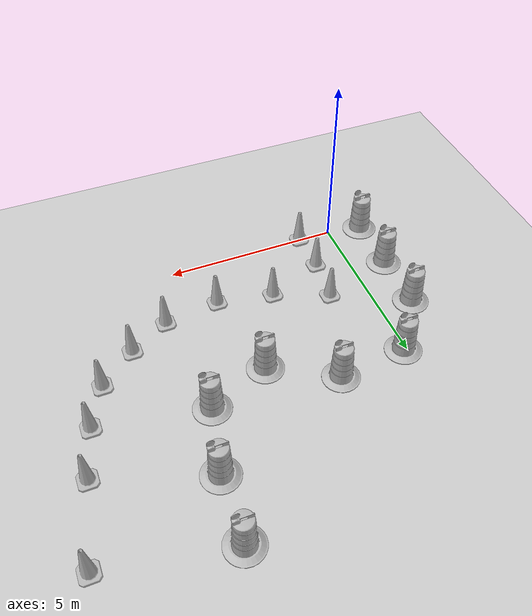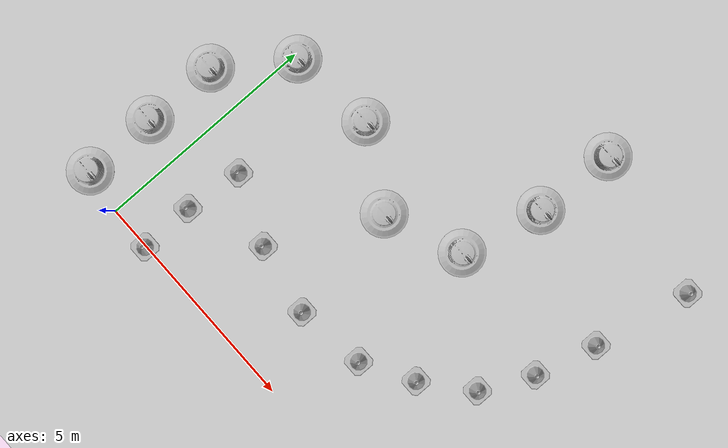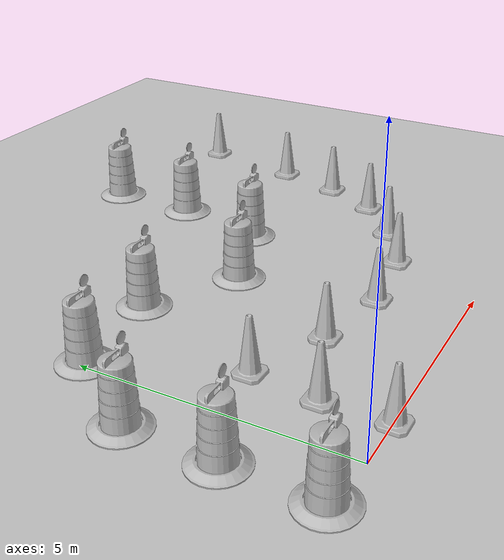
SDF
<sdf version="1.7">
 <world name="default">
  <light name="sun" type="directional">
   <pose>0 0 10 0 -0 0</pose>
   <diffuse>0.8 0.8 0.8 1</diffuse>
   <specular>0.2 0.2 0.2 1</specular>
   <attenuation>
    <range>1000</range>
    <constant>0.9</constant>
    <linear>0.01</linear>
    <quadratic>0.001</quadratic>
   </attenuation>
   <direction>-0.5 0.1 -0.9</direction>
   <spot><inner_angle>0</inner_angle><outer_angle>0</outer_angle><falloff>0</falloff></spot>
  </light>
  <model name="ground_plane">
   <static>1</static>
   <link name="link">
    <collision name="collision">
     <geometry><plane><normal>0 0 1</normal><size>100 100</size></plane></geometry>
     <surface>
      <contact><collide_bitmask>65535</collide_bitmask></contact>
      <friction><ode><mu>100</mu><mu2>50</mu2></ode></friction>
     </surface>
    </collision>
    <visual name="visual">
     <cast_shadows>0</cast_shadows>
     <geometry><plane><normal>0 0 1</normal><size>100 100</size></plane></geometry>
     <material>
      <script><uri>file://media/materials/scripts/gazebo.material</uri><name>Gazebo/Grey</name></script>
     </material>
    </visual>
   </link>
  </model>
  <gravity>0 0 -9.8</gravity>
  <magnetic_field>6e-06 2.3e-05 -4.2e-05</magnetic_field>
  <atmosphere type="adiabatic"/>
  <physics type="ode">
   <max_step_size>0.001</max_step_size>
   <real_time_factor>1</real_time_factor>
   <real_time_update_rate>1000</real_time_update_rate>
  </physics>
  <scene><ambient>0.4 0.4 0.4 1</ambient><background>0.7 0.7 0.7 1</background><shadows>1</shadows></scene>
  <spherical_coordinates>
   <surface_model>EARTH_WGS84</surface_model>
   <latitude_deg>0</latitude_deg>
   <longitude_deg>0</longitude_deg>
   <elevation>0</elevation>
   <heading_deg>0</heading_deg>
  </spherical_coordinates>
  <model name="Construction Barrel">
   <link name="link">
    <inertial>
     <pose>0 0 0.4 0 -0 0</pose>
     <mass>500</mass>
     <inertia><ixx>51.2096</ixx><iyy>51.2096</iyy><izz>25</izz><ixy>0</ixy><ixz>0</ixz><iyz>0</iyz></inertia>
    </inertial>
    <collision name="collision">
     <geometry><mesh><uri>model://construction_barrel/meshes/construction_barrel.dae</uri></mesh></geometry>
    </collision>
    <visual name="visual">
     <geometry><mesh><uri>model://construction_barrel/meshes/construction_barrel.dae</uri></mesh></geometry>
    </visual>
   </link>
   <pose>-0.966667 1.80977 -0 0 0 -5.3e-05</pose>
  </model>
  <model name="Construction Barrel_0">
   <link name="link">
    <inertial>
     <pose>0 0 0.4 0 -0 0</pose>
     <mass>500</mass>
     <inertia><ixx>51.2096</ixx><iyy>51.2096</iyy><izz>25</izz><ixy>0</ixy><ixz>0</ixz><iyz>0</iyz></inertia>
    </inertial>
    <collision name="collision">
     <geometry><mesh><uri>model://construction_barrel/meshes/construction_barrel.dae</uri></mesh></geometry>
    </collision>
    <visual name="visual">
     <geometry><mesh><uri>model://construction_barrel/meshes/construction_barrel.dae</uri></mesh></geometry>
    </visual>
   </link>
   <pose>-0.979538 0.159169 -0 0 0 -4.8e-05</pose>
  </model>
  <model name="Construction Barrel_1">
   <link name="link">
    <inertial>
     <pose>0 0 0.4 0 -0 0</pose>
     <mass>500</mass>
     <inertia><ixx>51.2096</ixx><iyy>51.2096</iyy><izz>25</izz><ixy>0</ixy><ixz>0</ixz><iyz>0</iyz></inertia>
    </inertial>
    <collision name="collision">
     <geometry><mesh><uri>model://construction_barrel/meshes/construction_barrel.dae</uri></mesh></geometry>
    </collision>
    <visual name="visual">
     <geometry><mesh><uri>model://construction_barrel/meshes/construction_barrel.dae</uri></mesh></geometry>
    </visual>
   </link>
   <pose>-0.947069 3.47415 -0 0 0 -4.7e-05</pose>
  </model>
  <model name="Construction Barrel_2">
   <link name="link">
    <inertial>
     <pose>0 0 0.4 0 -0 0</pose>
     <mass>500</mass>
     <inertia><ixx>51.2096</ixx><iyy>51.2096</iyy><izz>25</izz><ixy>0</ixy><ixz>0</ixz><iyz>0</iyz></inertia>
    </inertial>
    <collision name="collision">
     <geometry><mesh><uri>model://construction_barrel/meshes/construction_barrel.dae</uri></mesh></geometry>
    </collision>
    <visual name="visual">
     <geometry><mesh><uri>model://construction_barrel/meshes/construction_barrel.dae</uri></mesh></geometry>
    </visual>
   </link>
   <pose>0.111893 4.97897 -0 0 0 -4.6e-05</pose>
  </model>
  <model name="Construction Barrel_3">
   <link name="link">
    <inertial>
     <pose>0 0 0.4 0 -0 0</pose>
     <mass>500</mass>
     <inertia><ixx>51.2096</ixx><iyy>51.2096</iyy><izz>25</izz><ixy>0</ixy><ixz>0</ixz><iyz>0</iyz></inertia>
    </inertial>
    <collision name="collision">
     <geometry><mesh><uri>model://construction_barrel/meshes/construction_barrel.dae</uri></mesh></geometry>
    </collision>
    <visual name="visual">
     <geometry><mesh><uri>model://construction_barrel/meshes/construction_barrel.dae</uri></mesh></geometry>
    </visual>
   </link>
   <pose>2.03638 5.18461 -0 0 0 -4.4e-05</pose>
  </model>
  <model name="Construction Barrel_4">
   <link name="link">
    <inertial>
     <pose>0 0 0.4 0 -0 0</pose>
     <mass>500</mass>
     <inertia><ixx>51.2096</ixx><iyy>51.2096</iyy><izz>25</izz><ixy>0</ixy><ixz>0</ixz><iyz>0</iyz></inertia>
    </inertial>
    <collision name="collision">
     <geometry><mesh><uri>model://construction_barrel/meshes/construction_barrel.dae</uri></mesh></geometry>
    </collision>
    <visual name="visual">
     <geometry><mesh><uri>model://construction_barrel/meshes/construction_barrel.dae</uri></mesh></geometry>
    </visual>
   </link>
   <pose>3.74532 4.20522 -0 0 0 -4.3e-05</pose>
  </model>
  <model name="Construction Barrel_5">
   <link name="link">
    <inertial>
     <pose>0 0 0.4 0 -0 0</pose>
     <mass>500</mass>
     <inertia><ixx>51.2096</ixx><iyy>51.2096</iyy><izz>25</izz><ixy>0</ixy><ixz>0</ixz><iyz>0</iyz></inertia>
    </inertial>
    <collision name="collision">
     <geometry><mesh><uri>model://construction_barrel/meshes/construction_barrel.dae</uri></mesh></geometry>
    </collision>
    <visual name="visual">
     <geometry><mesh><uri>model://construction_barrel/meshes/construction_barrel.dae</uri></mesh></geometry>
    </visual>
   </link>
   <pose>5.43217 4.89608 -0 0 0 -4.2e-05</pose>
  </model>
  <model name="Construction Barrel_6">
   <link name="link">
    <inertial>
     <pose>0 0 0.4 0 -0 0</pose>
     <mass>500</mass>
     <inertia><ixx>51.2096</ixx><iyy>51.2096</iyy><izz>25</izz><ixy>0</ixy><ixz>0</ixz><iyz>0</iyz></inertia>
    </inertial>
    <collision name="collision">
     <geometry><mesh><uri>model://construction_barrel/meshes/construction_barrel.dae</uri></mesh></geometry>
    </collision>
    <visual name="visual">
     <geometry><mesh><uri>model://construction_barrel/meshes/construction_barrel.dae</uri></mesh></geometry>
    </visual>
   </link>
   <pose>5.84445 6.72604 -0 0 0 -4.1e-05</pose>
  </model>
  <model name="Construction Barrel_7">
   <link name="link">
    <inertial>
     <pose>0 0 0.4 0 -0 0</pose>
     <mass>500</mass>
     <inertia><ixx>51.2096</ixx><iyy>51.2096</iyy><izz>25</izz><ixy>0</ixy><ixz>0</ixz><iyz>0</iyz></inertia>
    </inertial>
    <collision name="collision">
     <geometry><mesh><uri>model://construction_barrel/meshes/construction_barrel.dae</uri></mesh></geometry>
    </collision>
    <visual name="visual">
     <geometry><mesh><uri>model://construction_barrel/meshes/construction_barrel.dae</uri></mesh></geometry>
    </visual>
   </link>
   <pose>5.92335 8.52618 -0 0 0 -4e-05</pose>
  </model>
  <model name="Construction Cone">
   <link name="link">
    <collision name="collision">
     <geometry>
      <mesh><scale>10 10 10</scale><uri>model://construction_cone/meshes/construction_cone.dae</uri></mesh>
     </geometry>
    </collision>
    <visual name="visual">
     <geometry>
      <mesh><scale>10 10 10</scale><uri>model://construction_cone/meshes/construction_cone.dae</uri></mesh>
     </geometry>
    </visual>
    <inertial>
     <inertia><ixx>1</ixx><ixy>0</ixy><ixz>0</ixz><iyy>1</iyy><iyz>0</iyz><izz>1</izz></inertia>
     <mass>1</mass>
    </inertial>
   </link>
   <pose>0.975524 -0.020087 -0 -0 -0 -0</pose>
  </model>
  <model name="Construction Cone_0">
   <link name="link">
    <collision name="collision">
     <geometry>
      <mesh><scale>10 10 10</scale><uri>model://construction_cone/meshes/construction_cone.dae</uri></mesh>
     </geometry>
    </collision>
    <visual name="visual">
     <geometry>
      <mesh><scale>10 10 10</scale><uri>model://construction_cone/meshes/construction_cone.dae</uri></mesh>
     </geometry>
    </visual>
    <inertial>
     <inertia><ixx>1</ixx><ixy>0</ixy><ixz>0</ixz><iyy>1</iyy><iyz>0</iyz><izz>1</izz></inertia>
     <mass>1</mass>
    </inertial>
   </link>
   <pose>0.959371 1.18722 -0 0 -1e-06 0</pose>
  </model>
  <model name="Construction Cone_1">
   <link name="link">
    <collision name="collision">
     <geometry>
      <mesh><scale>10 10 10</scale><uri>model://construction_cone/meshes/construction_cone.dae</uri></mesh>
     </geometry>
    </collision>
    <visual name="visual">
     <geometry>
      <mesh><scale>10 10 10</scale><uri>model://construction_cone/meshes/construction_cone.dae</uri></mesh>
     </geometry>
    </visual>
    <inertial>
     <inertia><ixx>1</ixx><ixy>0</ixy><ixz>0</ixz><iyy>1</iyy><iyz>0</iyz><izz>1</izz></inertia>
     <mass>1</mass>
    </inertial>
   </link>
   <pose>1.09629 2.47377 -1e-06 2e-06 2e-06 0</pose>
  </model>
  <model name="Construction Cone_2">
   <link name="link">
    <collision name="collision">
     <geometry>
      <mesh><scale>10 10 10</scale><uri>model://construction_cone/meshes/construction_cone.dae</uri></mesh>
     </geometry>
    </collision>
    <visual name="visual">
     <geometry>
      <mesh><scale>10 10 10</scale><uri>model://construction_cone/meshes/construction_cone.dae</uri></mesh>
     </geometry>
    </visual>
    <inertial>
     <inertia><ixx>1</ixx><ixy>0</ixy><ixz>0</ixz><iyy>1</iyy><iyz>0</iyz><izz>1</izz></inertia>
     <mass>1</mass>
    </inertial>
   </link>
   <pose>2.59046 1.85342 -1e-06 2e-06 2e-06 0</pose>
  </model>
  <model name="Construction Cone_3">
   <link name="link">
    <collision name="collision">
     <geometry>
      <mesh><scale>10 10 10</scale><uri>model://construction_cone/meshes/construction_cone.dae</uri></mesh>
     </geometry>
    </collision>
    <visual name="visual">
     <geometry>
      <mesh><scale>10 10 10</scale><uri>model://construction_cone/meshes/construction_cone.dae</uri></mesh>
     </geometry>
    </visual>
    <inertial>
     <inertia><ixx>1</ixx><ixy>0</ixy><ixz>0</ixz><iyy>1</iyy><iyz>0</iyz><izz>1</izz></inertia>
     <mass>1</mass>
    </inertial>
   </link>
   <pose>4.16237 1.56056 -1e-06 2e-06 2e-06 0</pose>
  </model>
  <model name="Construction Cone_4">
   <link name="link">
    <collision name="collision">
     <geometry>
      <mesh><scale>10 10 10</scale><uri>model://construction_cone/meshes/construction_cone.dae</uri></mesh>
     </geometry>
    </collision>
    <visual name="visual">
     <geometry>
      <mesh><scale>10 10 10</scale><uri>model://construction_cone/meshes/construction_cone.dae</uri></mesh>
     </geometry>
    </visual>
    <inertial>
     <inertia><ixx>1</ixx><ixy>0</ixy><ixz>0</ixz><iyy>1</iyy><iyz>0</iyz><izz>1</izz></inertia>
     <mass>1</mass>
    </inertial>
   </link>
   <pose>5.71996 1.77296 -1e-06 2e-06 2e-06 0</pose>
  </model>
  <model name="Construction Cone_5">
   <link name="link">
    <collision name="collision">
     <geometry>
      <mesh><scale>10 10 10</scale><uri>model://construction_cone/meshes/construction_cone.dae</uri></mesh>
     </geometry>
    </collision>
    <visual name="visual">
     <geometry>
      <mesh><scale>10 10 10</scale><uri>model://construction_cone/meshes/construction_cone.dae</uri></mesh>
     </geometry>
    </visual>
    <inertial>
     <inertia><ixx>1</ixx><ixy>0</ixy><ixz>0</ixz><iyy>1</iyy><iyz>0</iyz><izz>1</izz></inertia>
     <mass>1</mass>
    </inertial>
   </link>
   <pose>6.82216 2.40871 -0 -0 -0 -0</pose>
  </model>
  <model name="Construction Cone_6">
   <link name="link">
    <collision name="collision">
     <geometry>
      <mesh><scale>10 10 10</scale><uri>model://construction_cone/meshes/construction_cone.dae</uri></mesh>
     </geometry>
    </collision>
    <visual name="visual">
     <geometry>
      <mesh><scale>10 10 10</scale><uri>model://construction_cone/meshes/construction_cone.dae</uri></mesh>
     </geometry>
    </visual>
    <inertial>
     <inertia><ixx>1</ixx><ixy>0</ixy><ixz>0</ixz><iyy>1</iyy><iyz>0</iyz><izz>1</izz></inertia>
     <mass>1</mass>
    </inertial>
   </link>
   <pose>7.81947 3.2421 -1e-06 2e-06 2e-06 0</pose>
  </model>
  <model name="Construction Cone_7">
   <link name="link">
    <collision name="collision">
     <geometry>
      <mesh><scale>10 10 10</scale><uri>model://construction_cone/meshes/construction_cone.dae</uri></mesh>
     </geometry>
    </collision>
    <visual name="visual">
     <geometry>
      <mesh><scale>10 10 10</scale><uri>model://construction_cone/meshes/construction_cone.dae</uri></mesh>
     </geometry>
    </visual>
    <inertial>
     <inertia><ixx>1</ixx><ixy>0</ixy><ixz>0</ixz><iyy>1</iyy><iyz>0</iyz><izz>1</izz></inertia>
     <mass>1</mass>
    </inertial>
   </link>
   <pose>8.3678 4.3747 -0 0 -1e-06 0</pose>
  </model>
  <model name="Construction Cone_8">
   <link name="link">
    <collision name="collision">
     <geometry>
      <mesh><scale>10 10 10</scale><uri>model://construction_cone/meshes/construction_cone.dae</uri></mesh>
     </geometry>
    </collision>
    <visual name="visual">
     <geometry>
      <mesh><scale>10 10 10</scale><uri>model://construction_cone/meshes/construction_cone.dae</uri></mesh>
     </geometry>
    </visual>
    <inertial>
     <inertia><ixx>1</ixx><ixy>0</ixy><ixz>0</ixz><iyy>1</iyy><iyz>0</iyz><izz>1</izz></inertia>
     <mass>1</mass>
    </inertial>
   </link>
   <pose>9.1738 7.90055 -1e-06 2e-06 2e-06 0</pose>
  </model>
  <model name="Construction Cone_9">
   <link name="link">
    <collision name="collision">
     <geometry>
      <mesh><scale>10 10 10</scale><uri>model://construction_cone/meshes/construction_cone.dae</uri></mesh>
     </geometry>
    </collision>
    <visual name="visual">
     <geometry>
      <mesh><scale>10 10 10</scale><uri>model://construction_cone/meshes/construction_cone.dae</uri></mesh>
     </geometry>
    </visual>
    <inertial>
     <inertia><ixx>1</ixx><ixy>0</ixy><ixz>0</ixz><iyy>1</iyy><iyz>0</iyz><izz>1</izz></inertia>
     <mass>1</mass>
    </inertial>
   </link>
   <pose>8.7347 5.73819 -0 0 -1e-06 0</pose>
  </model>
 </world>
</sdf>
